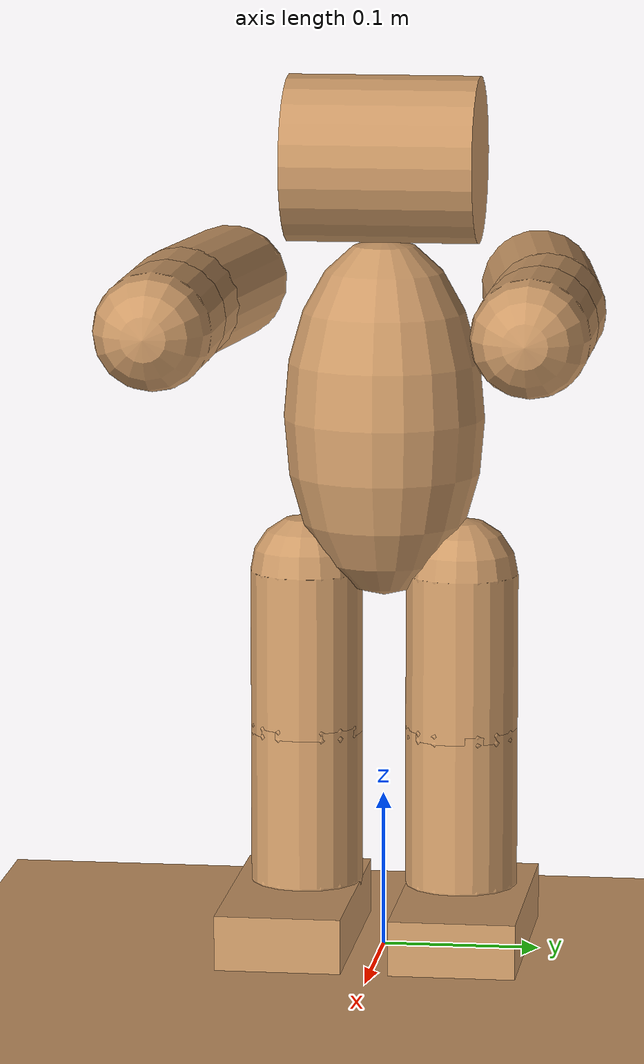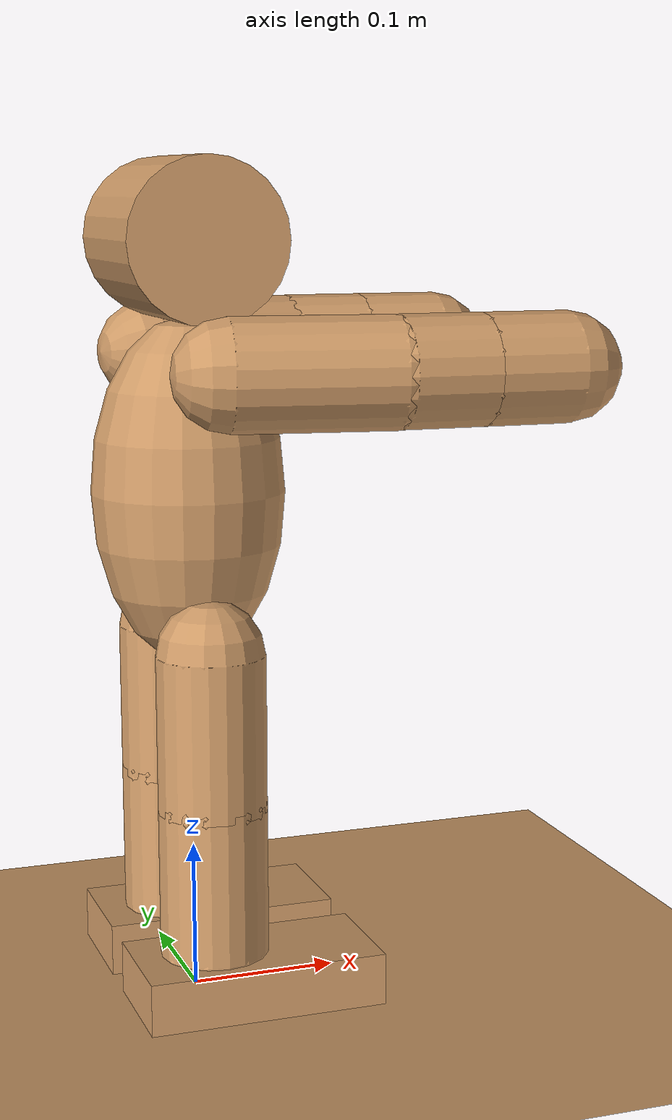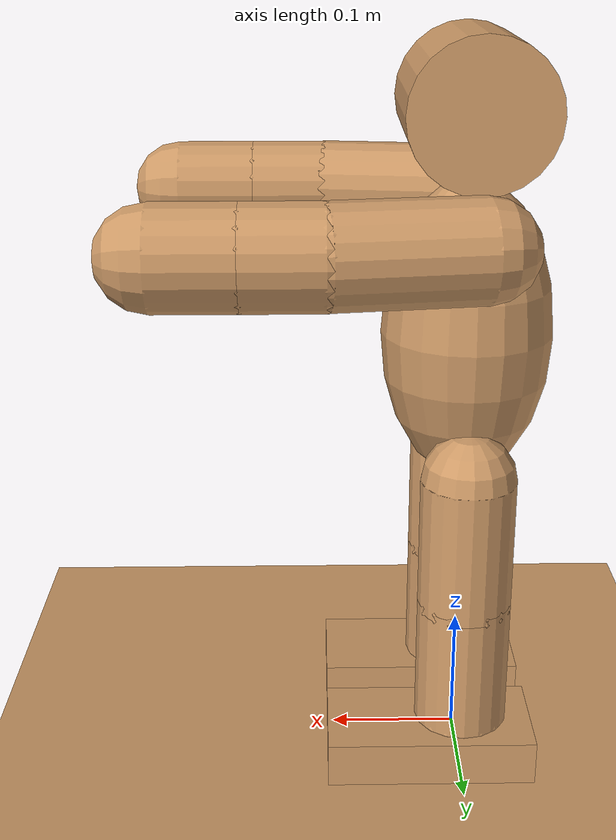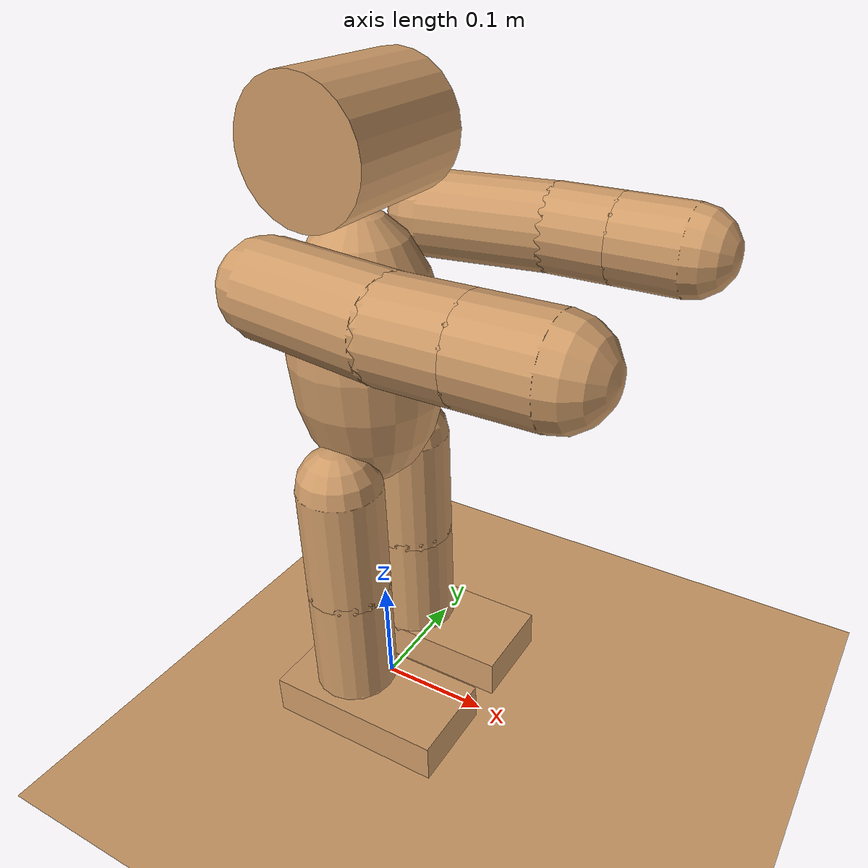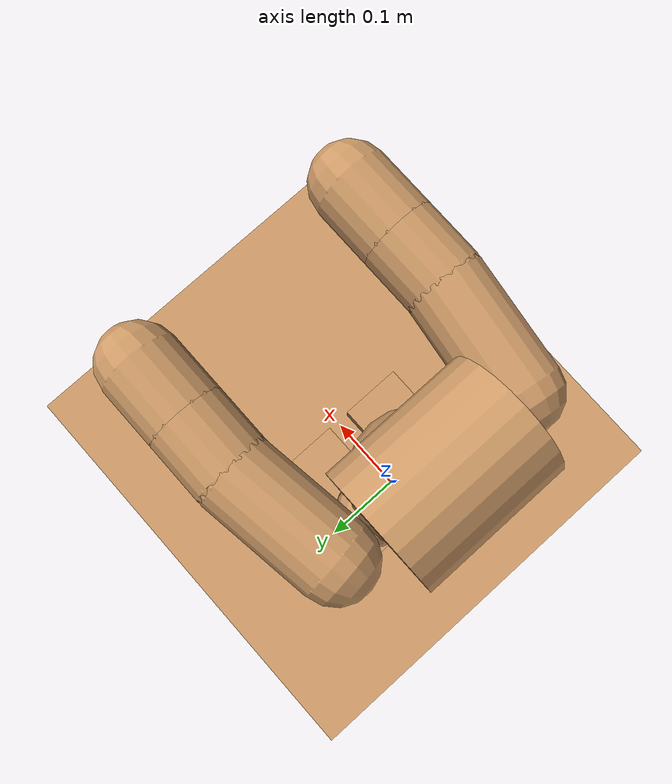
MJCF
<mujoco model="naoV6">
  <compiler angle="degree" inertiafromgeom="true"/>
  <option integrator="RK4" iterations="50" solver="PGS" timestep="0.003">
  </option>

  <asset>
    <texture type="skybox" builtin="gradient" rgb1=".3 .5 .7" rgb2="0 0 0" width="32" height="512"/>
    <texture name="grid" type="2d" builtin="checker" width="512" height="512" rgb1=".1 .2 .3" rgb2=".2 .3 .4"/>
    <material name="grid" texture="grid" texrepeat="1 1" texuniform="true" reflectance=".2"/>
  </asset>

  <visual>
    <global offwidth="1280" offheight="720"/>
    <map fogend="5" fogstart="3"/>
  </visual>

  <default>
    <joint armature="1" damping="1" limited="true"/>
    <geom conaffinity="1" condim="1" contype="1" margin="0.001" rgba="0.8 0.6 .4 1"/>
    <motor ctrllimited="true" ctrlrange="-1 1"/>
  </default>

  <worldbody>
    <geom name="floor" size="0 0 .05" type="plane" material="grid" condim="3"/>
    <light cutoff="100" diffuse="1 1 1" dir="-0 0 -1.3" directional="true" exponent="1" pos="0 0 1.3" specular=".1 .1 .1"/>

    <body name="torso" pos="0 0 0.33" euler="0 0 0">
      <freejoint name="root"/>
      <camera name="robot" mode="targetbody" target="torso" pos="0 1 0"/>
      <geom name="torso" type="ellipsoid" size="0.0642" fromto="0 0 -0.1 0 0 0.13"/>
      <site name="imu"/>
      <body name="head" pos="0 0 0.1265">
        <joint name="head_yaw" type="hinge" axis="0 0 1" range="-119.5 119.5"/>
        <joint name="head_pitch" type="hinge" axis="0 1 0" range="-38.5 29.5"/>
        <geom name="head" type="cylinder" size="0.053 0.0605" euler="90 0 0" pos="0 0 0.053"/>
        <site name="head_center" pos="0 0 0.053"/>
      </body>

      <body name="left_shoulder" pos="0 0.098 0.1">
        <joint name="left_shoulder_pitch" type="hinge" axis="0 1 0" range="-119.5 119.5"/>
        <joint name="left_shoulder_roll" type="hinge" axis="1 0 0" range="-18 76"/>
        <geom name="left_upper_arm" type="capsule" size="0.036" fromto="0 0 0 0.105 0.015 0"/>
        <body name="left_elbow" pos="0.105 0.015 0">
          <joint name="left_elbow_yaw" type="hinge" axis="1 0 0" range="-119.5 119.5"/>
          <joint name="left_elbow_roll" type="hinge" axis="0 0 1" range="-88.5 -2"/>
          <geom name="left_lower_arm" type="capsule" size="0.036" fromto="0 0 0 0.05595 0 0"/>
          <body name="left_wrist" pos="0.05595 0 0">
            <joint name="left_wrist_yaw" type="hinge" axis="1 0 0" range="-104.5 104.5"/>
            <geom name="left_wrist" type="capsule" size="0.036" fromto="0 0 0 0.05775 0 0"/>
          </body>
        </body>
      </body>

      <body name="right_shoulder" pos="0 -0.098 0.1">
        <joint name="right_shoulder_pitch" type="hinge" axis="0 1 0" range="-119.5 119.5"/>
        <joint name="right_shoulder_roll" type="hinge" axis="1 0 0" range="-76 18"/>
        <geom name="right_upper_arm" type="capsule" size="0.036" fromto="0 0 0 0.105 -0.015 0"/>
        <body name="right_elbow" pos="0.105 -0.015 0">
          <joint name="right_elbow_yaw" type="hinge" axis="1 0 0" range="-119.5 119.5"/>
          <joint name="right_elbow_roll" type="hinge" axis="0 0 1" range="2 88.5"/>
          <geom name="right_lower_arm" type="capsule" size="0.036" fromto="0 0 0 0.05595 0 0"/>
          <body name="right_wrist" pos="0.05595 0 0">
            <joint name="right_wrist_yaw" type="hinge" axis="1 0 0" range="-104.5 104.5"/>
            <geom name="right_wrist" type="capsule" size="0.036" fromto="0 0 0 0.05775 0 0"/>
          </body>
        </body>
      </body>

      <body name="left_upper_leg" pos="0 0.05 -0.085" euler="0 90 0">
        <joint name="left_hip_yaw_pitch" type="hinge" axis="-1 -1 0" range="-65.62 42.44"/>
        <joint name="left_hip_roll" type="hinge" axis="0 0 1" range="-21.74 45.29"/>
        <joint name="left_hip_pitch" type="hinge" axis="0 1 0" range="-88 27.73"/>
        <geom name="left_upper_leg" type="capsule" size="0.036" fromto="0 0 0 0.105 0 0"/>
        <body name="left_lower_leg" pos="0.1 0 0">
          <joint name="left_knee_pitch" type="hinge" axis="0 1 0" range="-5.29 121.04"/>
          <geom name="left_lower_leg" type="capsule" size="0.036" fromto="0 0 0 0.102 0 0"/>
          <body name="left_foot" pos="0.1029 0 0" euler="0 -90 0">
            <joint name="left_ankle_pitch" type="hinge" axis="0 1 0" range="-68.15 52.86"/>
            <joint name="left_ankle_roll" type="hinge" axis="1 0 0" range="-22.79 44.06"/>
            <geom name="left_foot" type="box" size="0.08 0.04 0.0175" pos="0.025 0.005 -0.0175"/>
          </body>
        </body>
      </body>

      <body name="right_upper_leg" pos="0 -0.05 -0.085" euler="0 90 0">
        <joint name="right_hip_yaw_pitch" type="hinge" axis="-1 1 0" range="-65.62 42.44" />
        <joint name="right_hip_roll" type="hinge" axis="0 0 1" range="-45.29 21.74 "/>
        <joint name="right_hip_pitch" type="hinge" axis="0 1 0" range="-88 27.73"/>
        <geom name="right_upper_leg" type="capsule" size="0.036" fromto="0 0 0 0.105 0 0"/>
        <body name="right_lower_leg" pos="0.1 0 0">
        <joint name="right_knee_pitch" type="hinge" axis="0 1 0" range="-5.9 121.04"/> <!-- The Fuck?! they are not the same as the left leg? -->
          <geom name="right_lower_leg" type="capsule" size="0.036" fromto="0 0 0 0.102 0 0"/>
          <body name="right_foot" pos="0.1029 0 0" euler="0 -90 0">
            <joint name="right_ankle_pitch" type="hinge" axis="0 1 0" range="-67.97 53.4"/>
            <joint name="right_ankle_roll" type="hinge" axis="1 0 0" range="-44.06 22.8"/>
            <geom name="right_foot" type="box" size="0.08 0.04 0.0175" pos="0.025 -0.005 -0.0175"/>
          </body>
        </body>
      </body>
    </body>
  </worldbody>

  <equality>
    <joint joint1="left_hip_yaw_pitch" joint2="right_hip_yaw_pitch" polycoef="0 -1 0 0 0"/>
  </equality>

  <contact>
    <exclude body1="left_wrist" body2="left_shoulder"/>
    <exclude body1="right_wrist" body2="right_shoulder"/>
  </contact>

  <sensor>
    <accelerometer name="accelerometer" site="imu"/>
    <gyro name="gyroscope" site="imu"/>

    <jointpos name="head_yaw" joint="head_yaw"/>
    <jointpos name="head_pitch" joint="head_pitch"/>
    <jointpos name="left_shoulder_pitch" joint="left_shoulder_pitch"/>
    <jointpos name="left_shoulder_roll" joint="left_shoulder_roll"/>
    <jointpos name="left_elbow_yaw" joint="left_elbow_yaw"/>
    <jointpos name="left_elbow_roll" joint="left_elbow_roll"/>
    <jointpos name="left_wrist_yaw" joint="left_wrist_yaw"/>

    <jointpos name="right_shoulder_pitch" joint="right_shoulder_pitch"/>
    <jointpos name="right_shoulder_roll" joint="right_shoulder_roll"/>
    <jointpos name="right_elbow_yaw" joint="right_elbow_yaw"/>
    <jointpos name="right_elbow_roll" joint="right_elbow_roll"/>
    <jointpos name="right_wrist_yaw" joint="right_wrist_yaw"/>

    <jointpos name="left_hip_yaw_pitch" joint="left_hip_yaw_pitch"/>
    <jointpos name="left_hip_roll" joint="left_hip_roll"/>
    <jointpos name="left_hip_pitch" joint="left_hip_pitch"/>
    <jointpos name="left_knee_pitch" joint="left_knee_pitch"/>
    <jointpos name="left_ankle_pitch" joint="left_ankle_pitch"/>
    <jointpos name="left_ankle_roll" joint="left_ankle_roll"/>

    <jointpos name="right_hip_yaw_pitch" joint="right_hip_yaw_pitch"/>
    <jointpos name="right_hip_roll" joint="right_hip_roll"/>
    <jointpos name="right_hip_pitch" joint="right_hip_pitch"/>
    <jointpos name="right_knee_pitch" joint="right_knee_pitch"/>
    <jointpos name="right_ankle_pitch" joint="right_ankle_pitch"/>
    <jointpos name="right_ankle_roll" joint="right_ankle_roll"/>
  </sensor>

  <actuator>
    <position name="head_yaw" joint="head_yaw" dampratio="1" kp="9.0"/>
    <position name="head_pitch" joint="head_pitch" dampratio="1" kp="9.0"/>

    <position name="left_shoulder_pitch" joint="left_shoulder_pitch" dampratio="1" kp="15.0"/>
    <position name="left_shoulder_roll" joint="left_shoulder_roll" dampratio="1" kp="15.0"/>
    <position name="left_elbow_yaw" joint="left_elbow_yaw" dampratio="1" kp="15.0"/>
    <position name="left_elbow_roll" joint="left_elbow_roll" dampratio="1" kp="15.0"/>
    <position name="left_wrist_yaw" joint="left_wrist_yaw" dampratio="1" kp="15.0"/>

    <position name="right_shoulder_pitch" joint="right_shoulder_pitch" dampratio="1" kp="15.0"/>
    <position name="right_shoulder_roll" joint="right_shoulder_roll" dampratio="1" kp="15.0"/>
    <position name="right_elbow_yaw" joint="right_elbow_yaw" dampratio="1" kp="15.0"/>
    <position name="right_elbow_roll" joint="right_elbow_roll" dampratio="1" kp="15.0"/>
    <position name="right_wrist_yaw" joint="right_wrist_yaw" dampratio="1" kp="15.0"/>

    <position name="left_hip_yaw_pitch" joint="left_hip_yaw_pitch" dampratio="1" kp="90.0"/>
    <position name="left_hip_roll" joint="left_hip_roll" dampratio="1" kp="90.0"/>
    <position name="left_hip_pitch" joint="left_hip_pitch" dampratio="1" kp="90.0"/>
    <position name="left_knee_pitch" joint="left_knee_pitch" dampratio="1" kp="90.0"/>
    <position name="left_ankle_pitch" joint="left_ankle_pitch" dampratio="1" kp="90.0"/>
    <position name="left_ankle_roll" joint="left_ankle_roll" dampratio="1" kp="90.0"/>

    <!-- Is controlled indirectly through left_hip_yaw_pitch -->
    <position name="right_hip_roll" joint="right_hip_roll" dampratio="1" kp="90.0"/>
    <position name="right_hip_pitch" joint="right_hip_pitch" dampratio="1" kp="90.0"/>
    <position name="right_knee_pitch" joint="right_knee_pitch" dampratio="1" kp="90.0"/>
    <position name="right_ankle_pitch" joint="right_ankle_pitch" dampratio="1" kp="90.0"/>
    <position name="right_ankle_roll" joint="right_ankle_roll" dampratio="1" kp="90.0"/>

  </actuator>

  <keyframe>
    <!--
    The values below are split into rows for readability:
      torso position
      torso orientation
      head
      left arm
      right arm
      left leg
      right leg
    -->
    <key name="zero"
         qpos="0 0 2.0
               1 0 0 0
               0 0
               0 0 0 0 0
               0 0 0 0 0
               0 0 0 0 0 0
               0 0 0 0 0 0"/>
    <key name="ready"
         qpos="0 0 0.3
               1 0 0 0
               0 0
               1.57 0.1 0 0 0
               1.57 0.1 0 0 0
               0 0 -0.25 0.35 -0.1 0
               0 0 -0.25 0.35 -0.1 0"/>
    <key name="face-down"
         qpos="0 0 0.064
               0.64 0.03 0.77 -0.02
               0 -0.4
               1.33 0.15 0.19 -0.08 0.1
               1.31 0.15 0.19 -0.08 -0.05
               0 0 -0.07 0.29 -0.04 0.02
               0 0.04 -0.1 0.31 0.04 0"/>
  </keyframe>
</mujoco>
